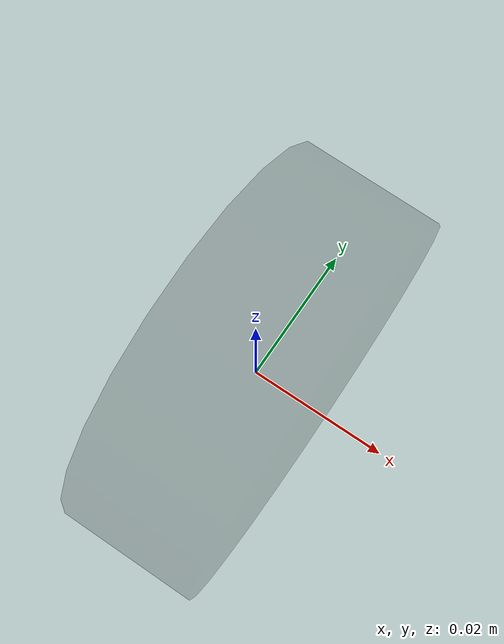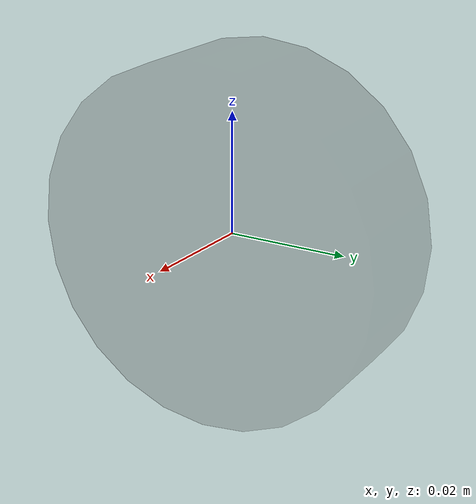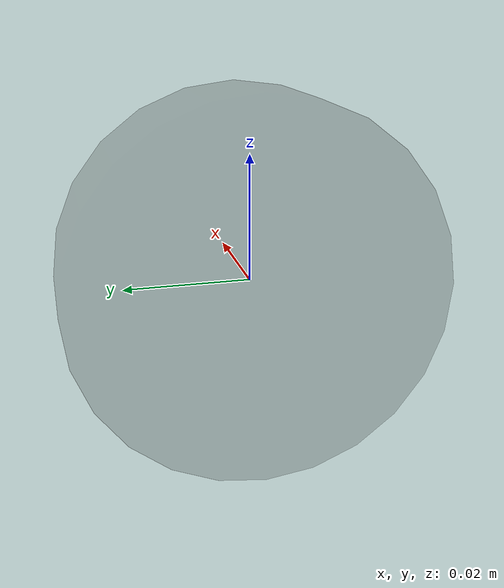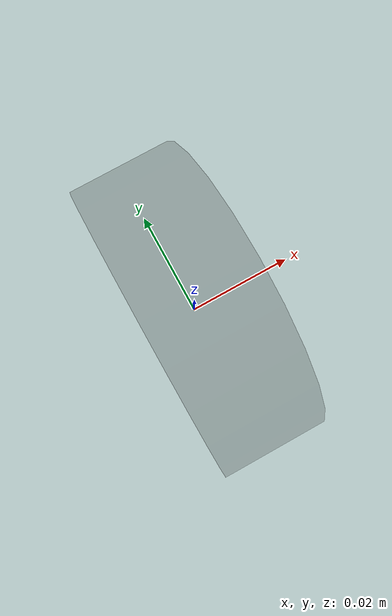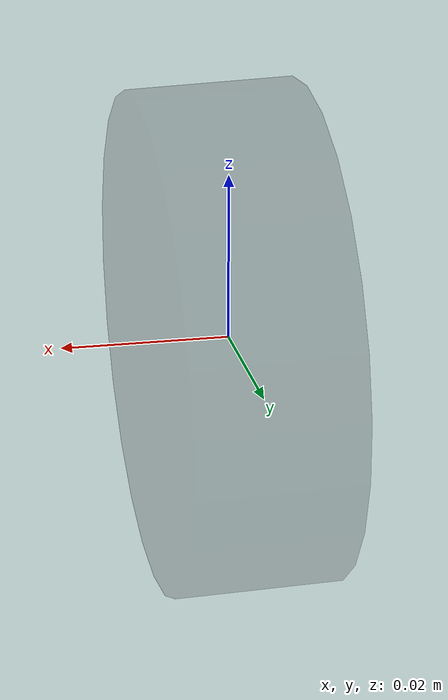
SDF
<?xml version="1.0" ?>
<sdf version="1.4">
  <model name="webcam">
    <static>true</static>
    <link name="link">
      <gravity>false</gravity>
      <inertial>
        <mass>0.02</mass>
      </inertial>
      <visual name="visual">
	<pose>0 0 0 0 1.6 0</pose>
        <geometry>
          <cylinder>
	    <length>0.02</length>
	    <radius>0.03</radius>
	  </cylinder>
        </geometry>
	<cast_shadows>false</cast_shadows>
	<material>
	  <ambient>0.0 0.0 0.0 0.1</ambient>
	  <diffuse>0.0 0.0 0.0 0.11</diffuse>
	</material>
      </visual>
      <sensor name="webcam_sensor" type="camera">
        <pose>0 0 0 0 0 0</pose>
        <always_on>1</always_on>
        <update_rate>2.0</update_rate>
        <visualize>false</visualize>
	<camera name="front_webcam">
	  <horizontal_fov>1.08</horizontal_fov>
	  <image>
	    <width>640</width>
	    <height>480</height>
	    <format>R8G8B8</format>
	  </image>
	</camera>
      <plugin name="camera_controller" filename="libgazebo_ros_camera.so">
        <robotNamespace>grips3</robotNamespace>
        <alwaysOn>true</alwaysOn>
        <updateRate>10.0</updateRate>
        <cameraName>camera_light</cameraName>
        <imageTopicName>image_light</imageTopicName>
        <cameraInfoTopicName>camera_light_info</cameraInfoTopicName>
        <frameName>camera_light_link</frameName>
      </plugin>
      </sensor>
      <!-- There is no plugin for the camera because you can access the shared memory pointer for the camera directly -->
    </link>
  </model>
</sdf>
